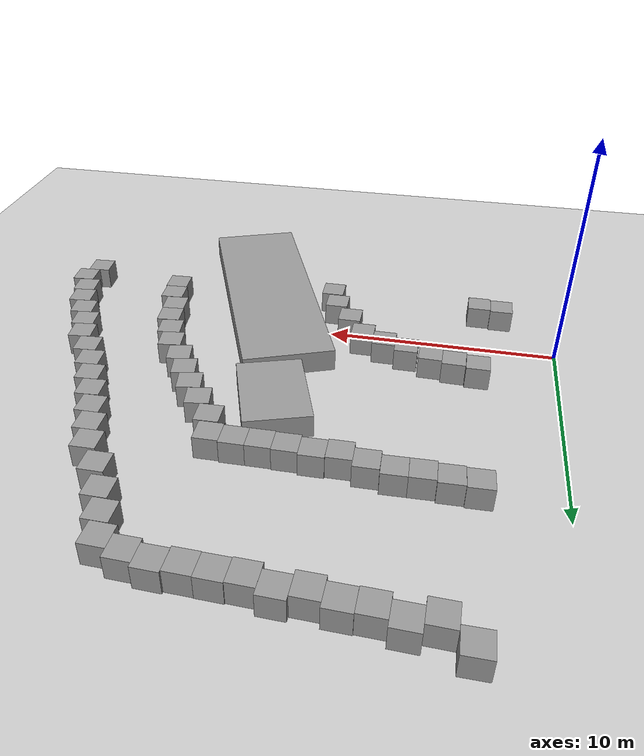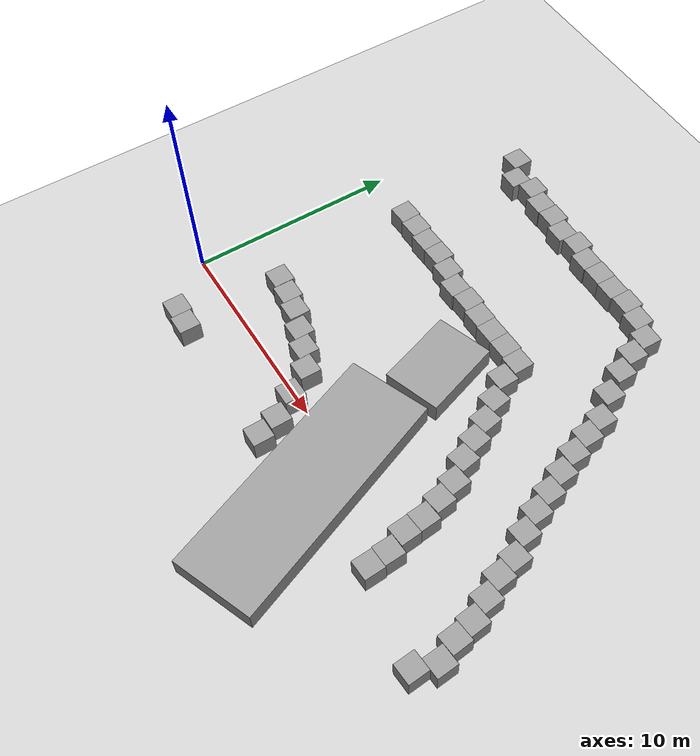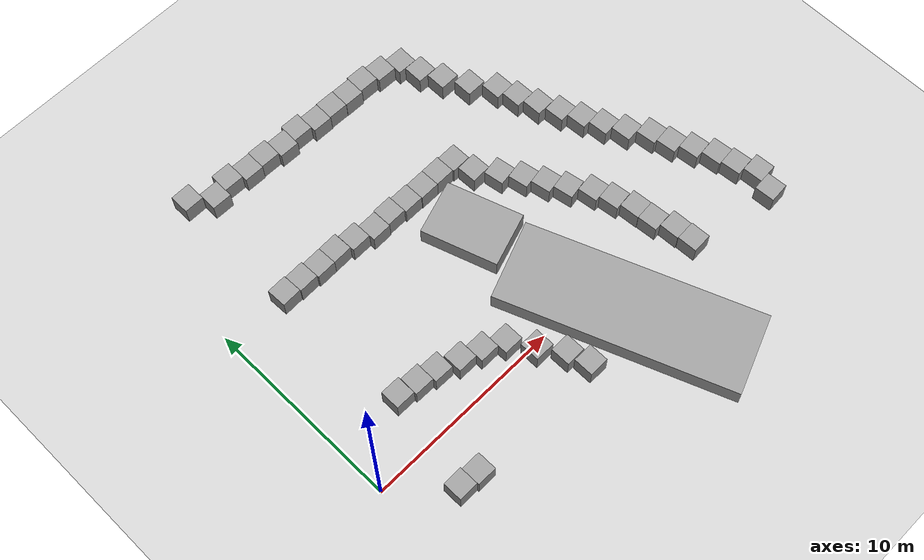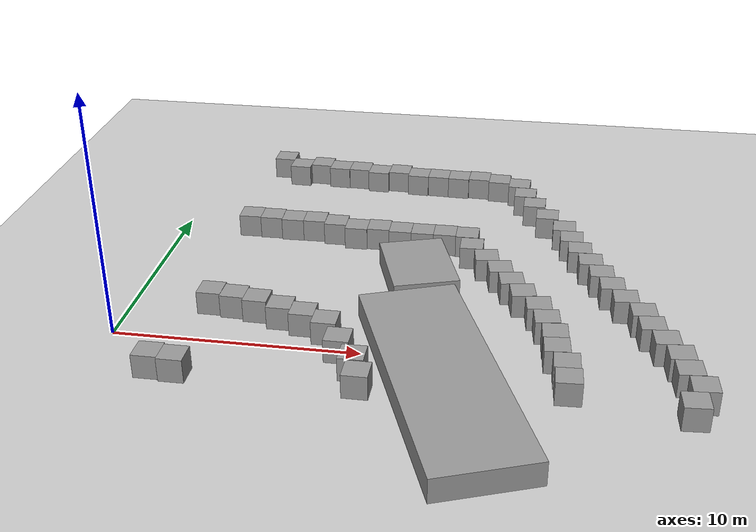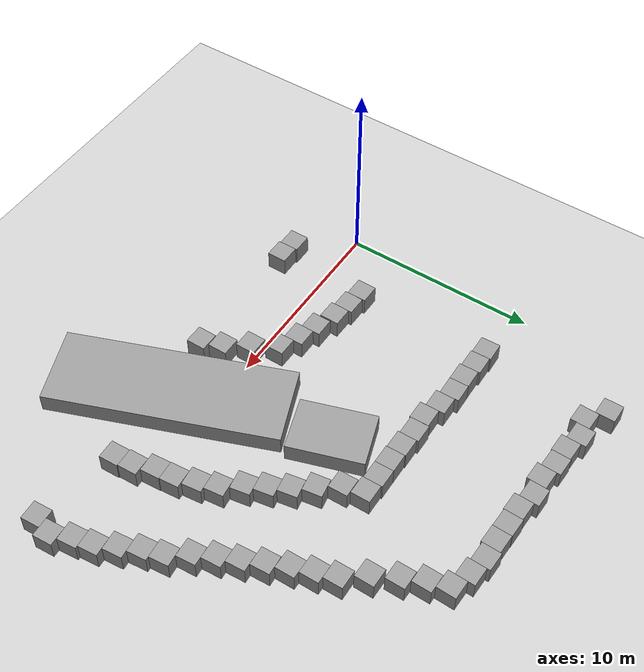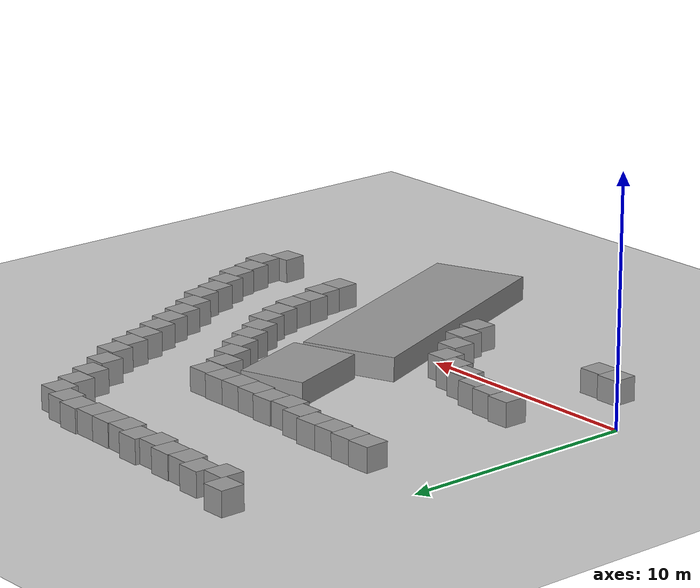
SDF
<sdf version="1.7">
 <world name="default">
  <model name="ground_plane">
   <static>1</static>
   <link name="link">
    <collision name="collision">
     <geometry><plane><normal>0 0 1</normal><size>100 100</size></plane></geometry>
     <surface>
      <contact><collide_bitmask>65535</collide_bitmask></contact>
      <friction><ode><mu>100</mu><mu2>50</mu2></ode></friction>
     </surface>
    </collision>
    <visual name="visual">
     <cast_shadows>0</cast_shadows>
     <geometry><plane><normal>0 0 1</normal><size>100 100</size></plane></geometry>
     <material>
      <script><uri>file://media/materials/scripts/gazebo.material</uri><name>Gazebo/Grey</name></script>
     </material>
    </visual>
   </link>
  </model>
  <model name="unit_box_4">
   <pose>3.37256 2.4173 0.5 0 -0 -0.00193</pose>
   <link name="link">
    <inertial>
     <mass>1</mass>
     <inertia>
      <ixx>0.166667</ixx>
      <ixy>0</ixy>
      <ixz>0</ixz>
      <iyy>0.166667</iyy>
      <iyz>0</iyz>
      <izz>0.166667</izz>
     </inertia>
    </inertial>
    <collision name="collision"><geometry><box><size>1 1 1</size></box></geometry></collision>
    <visual name="visual">
     <geometry><box><size>1 1 1</size></box></geometry>
     <material>
      <script><name>Gazebo/Grey</name><uri>file://media/materials/scripts/gazebo.material</uri></script>
     </material>
    </visual>
   </link>
  </model>
  <model name="unit_box_14">
   <pose>2.39599 -2.35304 0.5 0 -0 0.006262</pose>
   <link name="link">
    <inertial>
     <mass>1</mass>
     <inertia>
      <ixx>0.166667</ixx>
      <ixy>0</ixy>
      <ixz>0</ixz>
      <iyy>0.166667</iyy>
      <iyz>0</iyz>
      <izz>0.166667</izz>
     </inertia>
    </inertial>
    <collision name="collision"><geometry><box><size>1 1 1</size></box></geometry></collision>
    <visual name="visual">
     <geometry><box><size>1 1 1</size></box></geometry>
     <material>
      <script><name>Gazebo/Grey</name><uri>file://media/materials/scripts/gazebo.material</uri></script>
     </material>
    </visual>
   </link>
  </model>
  <model name="unit_box_15">
   <pose>3.39655 -2.43483 0.5 0 -0 0.006225</pose>
   <link name="link">
    <inertial>
     <mass>1</mass>
     <inertia>
      <ixx>0.166667</ixx>
      <ixy>0</ixy>
      <ixz>0</ixz>
      <iyy>0.166667</iyy>
      <iyz>0</iyz>
      <izz>0.166667</izz>
     </inertia>
    </inertial>
    <collision name="collision"><geometry><box><size>1 1 1</size></box></geometry></collision>
    <visual name="visual">
     <geometry><box><size>1 1 1</size></box></geometry>
     <material>
      <script><name>Gazebo/Grey</name><uri>file://media/materials/scripts/gazebo.material</uri></script>
     </material>
    </visual>
   </link>
  </model>
  <model name="unit_box_20">
   <pose>4.38108 2.28354 0.5 0 0 -0.015499</pose>
   <link name="link">
    <inertial>
     <mass>1</mass>
     <inertia>
      <ixx>0.166667</ixx>
      <ixy>0</ixy>
      <ixz>0</ixz>
      <iyy>0.166667</iyy>
      <iyz>0</iyz>
      <izz>0.166667</izz>
     </inertia>
    </inertial>
    <collision name="collision"><geometry><box><size>1 1 1</size></box></geometry></collision>
    <visual name="visual">
     <geometry><box><size>1 1 1</size></box></geometry>
     <material>
      <script><name>Gazebo/Grey</name><uri>file://media/materials/scripts/gazebo.material</uri></script>
     </material>
    </visual>
   </link>
  </model>
  <model name="unit_box_21">
   <pose>5.37841 2.09652 0.5 -0 -0 -0.0155</pose>
   <link name="link">
    <inertial>
     <mass>1</mass>
     <inertia>
      <ixx>0.166667</ixx>
      <ixy>0</ixy>
      <ixz>0</ixz>
      <iyy>0.166667</iyy>
      <iyz>0</iyz>
      <izz>0.166667</izz>
     </inertia>
    </inertial>
    <collision name="collision"><geometry><box><size>1 1 1</size></box></geometry></collision>
    <visual name="visual">
     <geometry><box><size>1 1 1</size></box></geometry>
     <material>
      <script><name>Gazebo/Grey</name><uri>file://media/materials/scripts/gazebo.material</uri></script>
     </material>
    </visual>
   </link>
  </model>
  <model name="unit_box_22">
   <pose>6.44585 1.71085 0.5 0 -0 5e-06</pose>
   <link name="link">
    <inertial>
     <mass>1</mass>
     <inertia>
      <ixx>0.166667</ixx>
      <ixy>0</ixy>
      <ixz>0</ixz>
      <iyy>0.166667</iyy>
      <iyz>0</iyz>
      <izz>0.166667</izz>
     </inertia>
    </inertial>
    <collision name="collision"><geometry><box><size>1 1 1</size></box></geometry></collision>
    <visual name="visual">
     <geometry><box><size>1 1 1</size></box></geometry>
     <material>
      <script><name>Gazebo/Grey</name><uri>file://media/materials/scripts/gazebo.material</uri></script>
     </material>
    </visual>
   </link>
  </model>
  <model name="unit_box_23">
   <pose>7.4465 1.3632 0.5 0 -0 5e-06</pose>
   <link name="link">
    <inertial>
     <mass>1</mass>
     <inertia>
      <ixx>0.166667</ixx>
      <ixy>0</ixy>
      <ixz>0</ixz>
      <iyy>0.166667</iyy>
      <iyz>0</iyz>
      <izz>0.166667</izz>
     </inertia>
    </inertial>
    <collision name="collision"><geometry><box><size>1 1 1</size></box></geometry></collision>
    <visual name="visual">
     <geometry><box><size>1 1 1</size></box></geometry>
     <material>
      <script><name>Gazebo/Grey</name><uri>file://media/materials/scripts/gazebo.material</uri></script>
     </material>
    </visual>
   </link>
  </model>
  <model name="unit_box_24">
   <pose>8.44685 0.885148 0.5 0 -0 5e-06</pose>
   <link name="link">
    <inertial>
     <mass>1</mass>
     <inertia>
      <ixx>0.166667</ixx>
      <ixy>0</ixy>
      <ixz>0</ixz>
      <iyy>0.166667</iyy>
      <iyz>0</iyz>
      <izz>0.166667</izz>
     </inertia>
    </inertial>
    <collision name="collision"><geometry><box><size>1 1 1</size></box></geometry></collision>
    <visual name="visual">
     <geometry><box><size>1 1 1</size></box></geometry>
     <material>
      <script><name>Gazebo/Grey</name><uri>file://media/materials/scripts/gazebo.material</uri></script>
     </material>
    </visual>
   </link>
  </model>
  <model name="unit_box_25">
   <pose>9.18636 -0.290445 0.5 0 -0 5e-06</pose>
   <link name="link">
    <inertial>
     <mass>1</mass>
     <inertia>
      <ixx>0.166667</ixx>
      <ixy>0</ixy>
      <ixz>0</ixz>
      <iyy>0.166667</iyy>
      <iyz>0</iyz>
      <izz>0.166667</izz>
     </inertia>
    </inertial>
    <collision name="collision"><geometry><box><size>1 1 1</size></box></geometry></collision>
    <visual name="visual">
     <geometry><box><size>1 1 1</size></box></geometry>
     <material>
      <script><name>Gazebo/Grey</name><uri>file://media/materials/scripts/gazebo.material</uri></script>
     </material>
    </visual>
   </link>
  </model>
  <model name="unit_box_26">
   <pose>9.95453 -1.40481 0.5 0 -0 0.004582</pose>
   <link name="link">
    <inertial>
     <mass>1</mass>
     <inertia>
      <ixx>0.166667</ixx>
      <ixy>0</ixy>
      <ixz>0</ixz>
      <iyy>0.166667</iyy>
      <iyz>0</iyz>
      <izz>0.166667</izz>
     </inertia>
    </inertial>
    <collision name="collision"><geometry><box><size>1 1 1</size></box></geometry></collision>
    <visual name="visual">
     <geometry><box><size>1 1 1</size></box></geometry>
     <material>
      <script><name>Gazebo/Grey</name><uri>file://media/materials/scripts/gazebo.material</uri></script>
     </material>
    </visual>
   </link>
  </model>
  <model name="unit_box_27">
   <pose>10.305 -2.44806 0.5 0 -0 5e-06</pose>
   <link name="link">
    <inertial>
     <mass>1</mass>
     <inertia>
      <ixx>0.166667</ixx>
      <ixy>0</ixy>
      <ixz>0</ixz>
      <iyy>0.166667</iyy>
      <iyz>0</iyz>
      <izz>0.166667</izz>
     </inertia>
    </inertial>
    <collision name="collision"><geometry><box><size>1 1 1</size></box></geometry></collision>
    <visual name="visual">
     <geometry><box><size>1 1 1</size></box></geometry>
     <material>
      <script><name>Gazebo/Grey</name><uri>file://media/materials/scripts/gazebo.material</uri></script>
     </material>
    </visual>
   </link>
  </model>
  <model name="unit_box_32_clone_22">
   <pose>17.915 -1.70225 0.5 0 -0 0.046373</pose>
   <link name="link">
    <inertial>
     <mass>1</mass>
     <inertia>
      <ixx>0.166667</ixx>
      <ixy>0</ixy>
      <ixz>0</ixz>
      <iyy>0.166667</iyy>
      <iyz>0</iyz>
      <izz>0.166667</izz>
     </inertia>
    </inertial>
    <collision name="collision"><geometry><box><size>1 1 1</size></box></geometry></collision>
    <visual name="visual">
     <geometry><box><size>1 1 1</size></box></geometry>
     <material>
      <script><name>Gazebo/Grey</name><uri>file://media/materials/scripts/gazebo.material</uri></script>
     </material>
    </visual>
   </link>
  </model>
  <model name="unit_box_32_clone_23">
   <pose>17.8221 -0.705479 0.5 0 -0 0.046392</pose>
   <link name="link">
    <inertial>
     <mass>1</mass>
     <inertia>
      <ixx>0.166667</ixx>
      <ixy>0</ixy>
      <ixz>0</ixz>
      <iyy>0.166667</iyy>
      <iyz>0</iyz>
      <izz>0.166667</izz>
     </inertia>
    </inertial>
    <collision name="collision"><geometry><box><size>1 1 1</size></box></geometry></collision>
    <visual name="visual">
     <geometry><box><size>1 1 1</size></box></geometry>
     <material>
      <script><name>Gazebo/Grey</name><uri>file://media/materials/scripts/gazebo.material</uri></script>
     </material>
    </visual>
   </link>
  </model>
  <model name="unit_box_32_clone_24">
   <pose>17.4265 0.282875 0.499995 0 -1e-05 0.081744</pose>
   <link name="link">
    <inertial>
     <mass>1</mass>
     <inertia>
      <ixx>0.166667</ixx>
      <ixy>0</ixy>
      <ixz>0</ixz>
      <iyy>0.166667</iyy>
      <iyz>0</iyz>
      <izz>0.166667</izz>
     </inertia>
    </inertial>
    <collision name="collision"><geometry><box><size>1 1 1</size></box></geometry></collision>
    <visual name="visual">
     <geometry><box><size>1 1 1</size></box></geometry>
     <material>
      <script><name>Gazebo/Grey</name><uri>file://media/materials/scripts/gazebo.material</uri></script>
     </material>
    </visual>
   </link>
  </model>
  <model name="unit_box_32_clone_25">
   <pose>17.3248 1.27792 0.5 0 -0 0.081794</pose>
   <link name="link">
    <inertial>
     <mass>1</mass>
     <inertia>
      <ixx>0.166667</ixx>
      <ixy>0</ixy>
      <ixz>0</ixz>
      <iyy>0.166667</iyy>
      <iyz>0</iyz>
      <izz>0.166667</izz>
     </inertia>
    </inertial>
    <collision name="collision"><geometry><box><size>1 1 1</size></box></geometry></collision>
    <visual name="visual">
     <geometry><box><size>1 1 1</size></box></geometry>
     <material>
      <script><name>Gazebo/Grey</name><uri>file://media/materials/scripts/gazebo.material</uri></script>
     </material>
    </visual>
   </link>
  </model>
  <model name="unit_box_32_clone_26">
   <pose>16.9722 2.26187 0.499995 0 -1e-05 0.121427</pose>
   <link name="link">
    <inertial>
     <mass>1</mass>
     <inertia>
      <ixx>0.166667</ixx>
      <ixy>0</ixy>
      <ixz>0</ixz>
      <iyy>0.166667</iyy>
      <iyz>0</iyz>
      <izz>0.166667</izz>
     </inertia>
    </inertial>
    <collision name="collision"><geometry><box><size>1 1 1</size></box></geometry></collision>
    <visual name="visual">
     <geometry><box><size>1 1 1</size></box></geometry>
     <material>
      <script><name>Gazebo/Grey</name><uri>file://media/materials/scripts/gazebo.material</uri></script>
     </material>
    </visual>
   </link>
  </model>
  <model name="unit_box_32_clone_27">
   <pose>16.6091 3.22503 0.5 0 -0 0.121588</pose>
   <link name="link">
    <inertial>
     <mass>1</mass>
     <inertia>
      <ixx>0.166667</ixx>
      <ixy>0</ixy>
      <ixz>0</ixz>
      <iyy>0.166667</iyy>
      <iyz>0</iyz>
      <izz>0.166667</izz>
     </inertia>
    </inertial>
    <collision name="collision"><geometry><box><size>1 1 1</size></box></geometry></collision>
    <visual name="visual">
     <geometry><box><size>1 1 1</size></box></geometry>
     <material>
      <script><name>Gazebo/Grey</name><uri>file://media/materials/scripts/gazebo.material</uri></script>
     </material>
    </visual>
   </link>
  </model>
  <model name="unit_box_32_clone_28">
   <pose>15.9248 4.14591 0.499995 -0 1e-05 0.175631</pose>
   <link name="link">
    <inertial>
     <mass>1</mass>
     <inertia>
      <ixx>0.166667</ixx>
      <ixy>0</ixy>
      <ixz>0</ixz>
      <iyy>0.166667</iyy>
      <iyz>0</iyz>
      <izz>0.166667</izz>
     </inertia>
    </inertial>
    <collision name="collision"><geometry><box><size>1 1 1</size></box></geometry></collision>
    <visual name="visual">
     <geometry><box><size>1 1 1</size></box></geometry>
     <material>
      <script><name>Gazebo/Grey</name><uri>file://media/materials/scripts/gazebo.material</uri></script>
     </material>
    </visual>
   </link>
  </model>
  <model name="unit_box_32_clone_29">
   <pose>15.4032 5.06903 0.5 0 -0 0.17563</pose>
   <link name="link">
    <inertial>
     <mass>1</mass>
     <inertia>
      <ixx>0.166667</ixx>
      <ixy>0</ixy>
      <ixz>0</ixz>
      <iyy>0.166667</iyy>
      <iyz>0</iyz>
      <izz>0.166667</izz>
     </inertia>
    </inertial>
    <collision name="collision"><geometry><box><size>1 1 1</size></box></geometry></collision>
    <visual name="visual">
     <geometry><box><size>1 1 1</size></box></geometry>
     <material>
      <script><name>Gazebo/Grey</name><uri>file://media/materials/scripts/gazebo.material</uri></script>
     </material>
    </visual>
   </link>
  </model>
  <model name="unit_box_32_clone_30">
   <pose>14.8669 5.9895 0.5 0 -0 0.175607</pose>
   <link name="link">
    <inertial>
     <mass>1</mass>
     <inertia>
      <ixx>0.166667</ixx>
      <ixy>0</ixy>
      <ixz>0</ixz>
      <iyy>0.166667</iyy>
      <iyz>0</iyz>
      <izz>0.166667</izz>
     </inertia>
    </inertial>
    <collision name="collision"><geometry><box><size>1 1 1</size></box></geometry></collision>
    <visual name="visual">
     <geometry><box><size>1 1 1</size></box></geometry>
     <material>
      <script><name>Gazebo/Grey</name><uri>file://media/materials/scripts/gazebo.material</uri></script>
     </material>
    </visual>
   </link>
  </model>
  <model name="unit_box_32_clone_31">
   <pose>14.216 6.89907 0.5 0 -0 0.157063</pose>
   <link name="link">
    <inertial>
     <mass>1</mass>
     <inertia>
      <ixx>0.166667</ixx>
      <ixy>0</ixy>
      <ixz>0</ixz>
      <iyy>0.166667</iyy>
      <iyz>0</iyz>
      <izz>0.166667</izz>
     </inertia>
    </inertial>
    <collision name="collision"><geometry><box><size>1 1 1</size></box></geometry></collision>
    <visual name="visual">
     <geometry><box><size>1 1 1</size></box></geometry>
     <material>
      <script><name>Gazebo/Grey</name><uri>file://media/materials/scripts/gazebo.material</uri></script>
     </material>
    </visual>
   </link>
  </model>
  <model name="unit_box_32_clone_32">
   <pose>13.4893 7.8569 0.5 0 -0 0.029155</pose>
   <link name="link">
    <inertial>
     <mass>1</mass>
     <inertia>
      <ixx>0.166667</ixx>
      <ixy>0</ixy>
      <ixz>0</ixz>
      <iyy>0.166667</iyy>
      <iyz>0</iyz>
      <izz>0.166667</izz>
     </inertia>
    </inertial>
    <collision name="collision"><geometry><box><size>1 1 1</size></box></geometry></collision>
    <visual name="visual">
     <geometry><box><size>1 1 1</size></box></geometry>
     <material>
      <script><name>Gazebo/Grey</name><uri>file://media/materials/scripts/gazebo.material</uri></script>
     </material>
    </visual>
   </link>
  </model>
  <model name="unit_box_32_clone_33">
   <pose>13.1982 8.87655 0.5 0 -0 0.01535</pose>
   <link name="link">
    <inertial>
     <mass>1</mass>
     <inertia>
      <ixx>0.166667</ixx>
      <ixy>0</ixy>
      <ixz>0</ixz>
      <iyy>0.166667</iyy>
      <iyz>0</iyz>
      <izz>0.166667</izz>
     </inertia>
    </inertial>
    <collision name="collision"><geometry><box><size>1 1 1</size></box></geometry></collision>
    <visual name="visual">
     <geometry><box><size>1 1 1</size></box></geometry>
     <material>
      <script><name>Gazebo/Grey</name><uri>file://media/materials/scripts/gazebo.material</uri></script>
     </material>
    </visual>
   </link>
  </model>
  <model name="unit_box_32_clone_62">
   <pose>22.314 -2.52261 0.499999 1e-06 -0 0.065665</pose>
   <link name="link">
    <inertial>
     <mass>1</mass>
     <inertia>
      <ixx>0.166667</ixx>
      <ixy>0</ixy>
      <ixz>0</ixz>
      <iyy>0.166667</iyy>
      <iyz>0</iyz>
      <izz>0.166667</izz>
     </inertia>
    </inertial>
    <collision name="collision"><geometry><box><size>1 1 1</size></box></geometry></collision>
    <visual name="visual">
     <geometry><box><size>1 1 1</size></box></geometry>
     <material>
      <script><name>Gazebo/Grey</name><uri>file://media/materials/scripts/gazebo.material</uri></script>
     </material>
    </visual>
   </link>
  </model>
  <model name="unit_box_32_clone_63">
   <pose>22.6986 -1.49511 0.5 0 -0 0.065756</pose>
   <link name="link">
    <inertial>
     <mass>1</mass>
     <inertia>
      <ixx>0.166667</ixx>
      <ixy>0</ixy>
      <ixz>0</ixz>
      <iyy>0.166667</iyy>
      <iyz>0</iyz>
      <izz>0.166667</izz>
     </inertia>
    </inertial>
    <collision name="collision"><geometry><box><size>1 1 1</size></box></geometry></collision>
    <visual name="visual">
     <geometry><box><size>1 1 1</size></box></geometry>
     <material>
      <script><name>Gazebo/Grey</name><uri>file://media/materials/scripts/gazebo.material</uri></script>
     </material>
    </visual>
   </link>
  </model>
  <model name="unit_box_32_clone_64">
   <pose>22.2494 -0.518774 0.499995 0 -1e-05 0.096065</pose>
   <link name="link">
    <inertial>
     <mass>1</mass>
     <inertia>
      <ixx>0.166667</ixx>
      <ixy>0</ixy>
      <ixz>0</ixz>
      <iyy>0.166667</iyy>
      <iyz>0</iyz>
      <izz>0.166667</izz>
     </inertia>
    </inertial>
    <collision name="collision"><geometry><box><size>1 1 1</size></box></geometry></collision>
    <visual name="visual">
     <geometry><box><size>1 1 1</size></box></geometry>
     <material>
      <script><name>Gazebo/Grey</name><uri>file://media/materials/scripts/gazebo.material</uri></script>
     </material>
    </visual>
   </link>
  </model>
  <model name="unit_box_32_clone_65">
   <pose>22.0121 0.463005 0.499995 -1e-05 -0 0.096071</pose>
   <link name="link">
    <inertial>
     <mass>1</mass>
     <inertia>
      <ixx>0.166667</ixx>
      <ixy>0</ixy>
      <ixz>0</ixz>
      <iyy>0.166667</iyy>
      <iyz>0</iyz>
      <izz>0.166667</izz>
     </inertia>
    </inertial>
    <collision name="collision"><geometry><box><size>1 1 1</size></box></geometry></collision>
    <visual name="visual">
     <geometry><box><size>1 1 1</size></box></geometry>
     <material>
      <script><name>Gazebo/Grey</name><uri>file://media/materials/scripts/gazebo.material</uri></script>
     </material>
    </visual>
   </link>
  </model>
  <model name="unit_box_32_clone_66">
   <pose>21.523 1.42169 0.5 0 -0 0.107049</pose>
   <link name="link">
    <inertial>
     <mass>1</mass>
     <inertia>
      <ixx>0.166667</ixx>
      <ixy>0</ixy>
      <ixz>0</ixz>
      <iyy>0.166667</iyy>
      <iyz>0</iyz>
      <izz>0.166667</izz>
     </inertia>
    </inertial>
    <collision name="collision"><geometry><box><size>1 1 1</size></box></geometry></collision>
    <visual name="visual">
     <geometry><box><size>1 1 1</size></box></geometry>
     <material>
      <script><name>Gazebo/Grey</name><uri>file://media/materials/scripts/gazebo.material</uri></script>
     </material>
    </visual>
   </link>
  </model>
  <model name="unit_box_32_clone_67">
   <pose>21.0283 2.37429 0.5 0 -0 0.107049</pose>
   <link name="link">
    <inertial>
     <mass>1</mass>
     <inertia>
      <ixx>0.166667</ixx>
      <ixy>0</ixy>
      <ixz>0</ixz>
      <iyy>0.166667</iyy>
      <iyz>0</iyz>
      <izz>0.166667</izz>
     </inertia>
    </inertial>
    <collision name="collision"><geometry><box><size>1 1 1</size></box></geometry></collision>
    <visual name="visual">
     <geometry><box><size>1 1 1</size></box></geometry>
     <material>
      <script><name>Gazebo/Grey</name><uri>file://media/materials/scripts/gazebo.material</uri></script>
     </material>
    </visual>
   </link>
  </model>
  <model name="unit_box_32_clone_68">
   <pose>20.724 3.34736 0.499995 0 1e-05 0.107034</pose>
   <link name="link">
    <inertial>
     <mass>1</mass>
     <inertia>
      <ixx>0.166667</ixx>
      <ixy>0</ixy>
      <ixz>0</ixz>
      <iyy>0.166667</iyy>
      <iyz>0</iyz>
      <izz>0.166667</izz>
     </inertia>
    </inertial>
    <collision name="collision"><geometry><box><size>1 1 1</size></box></geometry></collision>
    <visual name="visual">
     <geometry><box><size>1 1 1</size></box></geometry>
     <material>
      <script><name>Gazebo/Grey</name><uri>file://media/materials/scripts/gazebo.material</uri></script>
     </material>
    </visual>
   </link>
  </model>
  <model name="unit_box_32_clone_69">
   <pose>20.0438 4.29378 0.5 0 -0 0.079301</pose>
   <link name="link">
    <inertial>
     <mass>1</mass>
     <inertia>
      <ixx>0.166667</ixx>
      <ixy>0</ixy>
      <ixz>0</ixz>
      <iyy>0.166667</iyy>
      <iyz>0</iyz>
      <izz>0.166667</izz>
     </inertia>
    </inertial>
    <collision name="collision"><geometry><box><size>1 1 1</size></box></geometry></collision>
    <visual name="visual">
     <geometry><box><size>1 1 1</size></box></geometry>
     <material>
      <script><name>Gazebo/Grey</name><uri>file://media/materials/scripts/gazebo.material</uri></script>
     </material>
    </visual>
   </link>
  </model>
  <model name="unit_box_32_clone_70">
   <pose>19.521 5.25999 0.5 0 -0 0.07009</pose>
   <link name="link">
    <inertial>
     <mass>1</mass>
     <inertia>
      <ixx>0.166667</ixx>
      <ixy>0</ixy>
      <ixz>0</ixz>
      <iyy>0.166667</iyy>
      <iyz>0</iyz>
      <izz>0.166667</izz>
     </inertia>
    </inertial>
    <collision name="collision"><geometry><box><size>1 1 1</size></box></geometry></collision>
    <visual name="visual">
     <geometry><box><size>1 1 1</size></box></geometry>
     <material>
      <script><name>Gazebo/Grey</name><uri>file://media/materials/scripts/gazebo.material</uri></script>
     </material>
    </visual>
   </link>
  </model>
  <model name="unit_box_32_clone_71">
   <pose>19.0887 6.23212 0.499995 0 -1e-05 0.070048</pose>
   <link name="link">
    <inertial>
     <mass>1</mass>
     <inertia>
      <ixx>0.166667</ixx>
      <ixy>0</ixy>
      <ixz>0</ixz>
      <iyy>0.166667</iyy>
      <iyz>0</iyz>
      <izz>0.166667</izz>
     </inertia>
    </inertial>
    <collision name="collision"><geometry><box><size>1 1 1</size></box></geometry></collision>
    <visual name="visual">
     <geometry><box><size>1 1 1</size></box></geometry>
     <material>
      <script><name>Gazebo/Grey</name><uri>file://media/materials/scripts/gazebo.material</uri></script>
     </material>
    </visual>
   </link>
  </model>
  <model name="unit_box_32_clone_72">
   <pose>18.6258 7.20615 0.5 0 -0 0.061942</pose>
   <link name="link">
    <inertial>
     <mass>1</mass>
     <inertia>
      <ixx>0.166667</ixx>
      <ixy>0</ixy>
      <ixz>0</ixz>
      <iyy>0.166667</iyy>
      <iyz>0</iyz>
      <izz>0.166667</izz>
     </inertia>
    </inertial>
    <collision name="collision"><geometry><box><size>1 1 1</size></box></geometry></collision>
    <visual name="visual">
     <geometry><box><size>1 1 1</size></box></geometry>
     <material>
      <script><name>Gazebo/Grey</name><uri>file://media/materials/scripts/gazebo.material</uri></script>
     </material>
    </visual>
   </link>
  </model>
  <model name="unit_box_32_clone_73">
   <pose>18.167 8.20061 0.5 0 -0 0.019139</pose>
   <link name="link">
    <inertial>
     <mass>1</mass>
     <inertia>
      <ixx>0.166667</ixx>
      <ixy>0</ixy>
      <ixz>0</ixz>
      <iyy>0.166667</iyy>
      <iyz>0</iyz>
      <izz>0.166667</izz>
     </inertia>
    </inertial>
    <collision name="collision"><geometry><box><size>1 1 1</size></box></geometry></collision>
    <visual name="visual">
     <geometry><box><size>1 1 1</size></box></geometry>
     <material>
      <script><name>Gazebo/Grey</name><uri>file://media/materials/scripts/gazebo.material</uri></script>
     </material>
    </visual>
   </link>
  </model>
  <model name="unit_box_32_clone_74">
   <pose>17.7907 9.1937 0.5 0 -0 0.018921</pose>
   <link name="link">
    <inertial>
     <mass>1</mass>
     <inertia>
      <ixx>0.166667</ixx>
      <ixy>0</ixy>
      <ixz>0</ixz>
      <iyy>0.166667</iyy>
      <iyz>0</iyz>
      <izz>0.166667</izz>
     </inertia>
    </inertial>
    <collision name="collision"><geometry><box><size>1 1 1</size></box></geometry></collision>
    <visual name="visual">
     <geometry><box><size>1 1 1</size></box></geometry>
     <material>
      <script><name>Gazebo/Grey</name><uri>file://media/materials/scripts/gazebo.material</uri></script>
     </material>
    </visual>
   </link>
  </model>
  <model name="unit_box_32_clone_75">
   <pose>17.4381 10.1873 0.499995 0 -1e-05 0.018705</pose>
   <link name="link">
    <inertial>
     <mass>1</mass>
     <inertia>
      <ixx>0.166667</ixx>
      <ixy>0</ixy>
      <ixz>0</ixz>
      <iyy>0.166667</iyy>
      <iyz>0</iyz>
      <izz>0.166667</izz>
     </inertia>
    </inertial>
    <collision name="collision"><geometry><box><size>1 1 1</size></box></geometry></collision>
    <visual name="visual">
     <geometry><box><size>1 1 1</size></box></geometry>
     <material>
      <script><name>Gazebo/Grey</name><uri>file://media/materials/scripts/gazebo.material</uri></script>
     </material>
    </visual>
   </link>
  </model>
  <model name="unit_box_32_clone_76">
   <pose>16.6369 11.2615 0.5 0 -0 0.001324</pose>
   <link name="link">
    <inertial>
     <mass>1</mass>
     <inertia>
      <ixx>0.166667</ixx>
      <ixy>0</ixy>
      <ixz>0</ixz>
      <iyy>0.166667</iyy>
      <iyz>0</iyz>
      <izz>0.166667</izz>
     </inertia>
    </inertial>
    <collision name="collision"><geometry><box><size>1 1 1</size></box></geometry></collision>
    <visual name="visual">
     <geometry><box><size>1 1 1</size></box></geometry>
     <material>
      <script><name>Gazebo/Grey</name><uri>file://media/materials/scripts/gazebo.material</uri></script>
     </material>
    </visual>
   </link>
  </model>
  <model name="unit_box_32_clone_77">
   <pose>16 12.4104 0.5 0 -0 0.001319</pose>
   <link name="link">
    <inertial>
     <mass>1</mass>
     <inertia>
      <ixx>0.166667</ixx>
      <ixy>0</ixy>
      <ixz>0</ixz>
      <iyy>0.166667</iyy>
      <iyz>0</iyz>
      <izz>0.166667</izz>
     </inertia>
    </inertial>
    <collision name="collision"><geometry><box><size>1 1 1</size></box></geometry></collision>
    <visual name="visual">
     <geometry><box><size>1 1 1</size></box></geometry>
     <material>
      <script><name>Gazebo/Grey</name><uri>file://media/materials/scripts/gazebo.material</uri></script>
     </material>
    </visual>
   </link>
  </model>
  <model name="unit_box_32_clone_78">
   <pose>15.5142 13.4334 0.5 0 0 -0.008252</pose>
   <link name="link">
    <inertial>
     <mass>1</mass>
     <inertia>
      <ixx>0.166667</ixx>
      <ixy>0</ixy>
      <ixz>0</ixz>
      <iyy>0.166667</iyy>
      <iyz>0</iyz>
      <izz>0.166667</izz>
     </inertia>
    </inertial>
    <collision name="collision"><geometry><box><size>1 1 1</size></box></geometry></collision>
    <visual name="visual">
     <geometry><box><size>1 1 1</size></box></geometry>
     <material>
      <script><name>Gazebo/Grey</name><uri>file://media/materials/scripts/gazebo.material</uri></script>
     </material>
    </visual>
   </link>
  </model>
  <model name="unit_box_32_clone_78_clone">
   <pose>15.1782 14.4476 0.5 0 0 -0.024448</pose>
   <link name="link">
    <inertial>
     <mass>1</mass>
     <inertia>
      <ixx>0.166667</ixx>
      <ixy>0</ixy>
      <ixz>0</ixz>
      <iyy>0.166667</iyy>
      <iyz>0</iyz>
      <izz>0.166667</izz>
     </inertia>
    </inertial>
    <collision name="collision"><geometry><box><size>1 1 1</size></box></geometry></collision>
    <visual name="visual">
     <geometry><box><size>1 1 1</size></box></geometry>
     <material>
      <script><name>Gazebo/Grey</name><uri>file://media/materials/scripts/gazebo.material</uri></script>
     </material>
    </visual>
   </link>
  </model>
  <model name="unit_box_32_clone_78_clone_0">
   <pose>14.1869 14.817 0.5 0 0 -0.024455</pose>
   <link name="link">
    <inertial>
     <mass>1</mass>
     <inertia>
      <ixx>0.166667</ixx>
      <ixy>0</ixy>
      <ixz>0</ixz>
      <iyy>0.166667</iyy>
      <iyz>0</iyz>
      <izz>0.166667</izz>
     </inertia>
    </inertial>
    <collision name="collision"><geometry><box><size>1 1 1</size></box></geometry></collision>
    <visual name="visual">
     <geometry><box><size>1 1 1</size></box></geometry>
     <material>
      <script><name>Gazebo/Grey</name><uri>file://media/materials/scripts/gazebo.material</uri></script>
     </material>
    </visual>
   </link>
  </model>
  <model name="unit_box_32_clone_78_clone_1">
   <pose>13.1913 15.0088 0.5 0 0 -0.024455</pose>
   <link name="link">
    <inertial>
     <mass>1</mass>
     <inertia>
      <ixx>0.166667</ixx>
      <ixy>0</ixy>
      <ixz>0</ixz>
      <iyy>0.166667</iyy>
      <iyz>0</iyz>
      <izz>0.166667</izz>
     </inertia>
    </inertial>
    <collision name="collision"><geometry><box><size>1 1 1</size></box></geometry></collision>
    <visual name="visual">
     <geometry><box><size>1 1 1</size></box></geometry>
     <material>
      <script><name>Gazebo/Grey</name><uri>file://media/materials/scripts/gazebo.material</uri></script>
     </material>
    </visual>
   </link>
  </model>
  <model name="unit_box_32_clone_78_clone_2">
   <pose>12.1896 14.953 0.5 -0 -0 -0.024445</pose>
   <link name="link">
    <inertial>
     <mass>1</mass>
     <inertia>
      <ixx>0.166667</ixx>
      <ixy>0</ixy>
      <ixz>0</ixz>
      <iyy>0.166667</iyy>
      <iyz>0</iyz>
      <izz>0.166667</izz>
     </inertia>
    </inertial>
    <collision name="collision"><geometry><box><size>1 1 1</size></box></geometry></collision>
    <visual name="visual">
     <geometry><box><size>1 1 1</size></box></geometry>
     <material>
      <script><name>Gazebo/Grey</name><uri>file://media/materials/scripts/gazebo.material</uri></script>
     </material>
    </visual>
   </link>
  </model>
  <model name="unit_box_32_clone_78_clone_3">
   <pose>11.1902 14.9894 0.5 0 0 -0.024445</pose>
   <link name="link">
    <inertial>
     <mass>1</mass>
     <inertia>
      <ixx>0.166667</ixx>
      <ixy>0</ixy>
      <ixz>0</ixz>
      <iyy>0.166667</iyy>
      <iyz>0</iyz>
      <izz>0.166667</izz>
     </inertia>
    </inertial>
    <collision name="collision"><geometry><box><size>1 1 1</size></box></geometry></collision>
    <visual name="visual">
     <geometry><box><size>1 1 1</size></box></geometry>
     <material>
      <script><name>Gazebo/Grey</name><uri>file://media/materials/scripts/gazebo.material</uri></script>
     </material>
    </visual>
   </link>
  </model>
  <model name="unit_box_32_clone_78_clone_4">
   <pose>10.1896 14.981 0.5 0 0 -0.024408</pose>
   <link name="link">
    <inertial>
     <mass>1</mass>
     <inertia>
      <ixx>0.166667</ixx>
      <ixy>0</ixy>
      <ixz>0</ixz>
      <iyy>0.166667</iyy>
      <iyz>0</iyz>
      <izz>0.166667</izz>
     </inertia>
    </inertial>
    <collision name="collision"><geometry><box><size>1 1 1</size></box></geometry></collision>
    <visual name="visual">
     <geometry><box><size>1 1 1</size></box></geometry>
     <material>
      <script><name>Gazebo/Grey</name><uri>file://media/materials/scripts/gazebo.material</uri></script>
     </material>
    </visual>
   </link>
  </model>
  <model name="unit_box_32_clone_78_clone_5">
   <pose>9.19559 15.245 0.5 0 -0 -0.024604</pose>
   <link name="link">
    <inertial>
     <mass>1</mass>
     <inertia>
      <ixx>0.166667</ixx>
      <ixy>0</ixy>
      <ixz>0</ixz>
      <iyy>0.166667</iyy>
      <iyz>0</iyz>
      <izz>0.166667</izz>
     </inertia>
    </inertial>
    <collision name="collision"><geometry><box><size>1 1 1</size></box></geometry></collision>
    <visual name="visual">
     <geometry><box><size>1 1 1</size></box></geometry>
     <material>
      <script><name>Gazebo/Grey</name><uri>file://media/materials/scripts/gazebo.material</uri></script>
     </material>
    </visual>
   </link>
  </model>
  <model name="unit_box_32_clone_78_clone_6">
   <pose>8.19116 15.0778 0.499995 -1e-05 -0 -0.024602</pose>
   <link name="link">
    <inertial>
     <mass>1</mass>
     <inertia>
      <ixx>0.166667</ixx>
      <ixy>0</ixy>
      <ixz>0</ixz>
      <iyy>0.166667</iyy>
      <iyz>0</iyz>
      <izz>0.166667</izz>
     </inertia>
    </inertial>
    <collision name="collision"><geometry><box><size>1 1 1</size></box></geometry></collision>
    <visual name="visual">
     <geometry><box><size>1 1 1</size></box></geometry>
     <material>
      <script><name>Gazebo/Grey</name><uri>file://media/materials/scripts/gazebo.material</uri></script>
     </material>
    </visual>
   </link>
  </model>
  <model name="unit_box_32_clone_78_clone_7">
   <pose>7.19629 15.2993 0.5 -0 -0 -0.024582</pose>
   <link name="link">
    <inertial>
     <mass>1</mass>
     <inertia>
      <ixx>0.166667</ixx>
      <ixy>0</ixy>
      <ixz>0</ixz>
      <iyy>0.166667</iyy>
      <iyz>0</iyz>
      <izz>0.166667</izz>
     </inertia>
    </inertial>
    <collision name="collision"><geometry><box><size>1 1 1</size></box></geometry></collision>
    <visual name="visual">
     <geometry><box><size>1 1 1</size></box></geometry>
     <material>
      <script><name>Gazebo/Grey</name><uri>file://media/materials/scripts/gazebo.material</uri></script>
     </material>
    </visual>
   </link>
  </model>
  <model name="unit_box_32_clone_33_clone">
   <pose>12.1973 8.92208 0.5 0 -0 0.015367</pose>
   <link name="link">
    <inertial>
     <mass>1</mass>
     <inertia>
      <ixx>0.166667</ixx>
      <ixy>0</ixy>
      <ixz>0</ixz>
      <iyy>0.166667</iyy>
      <iyz>0</iyz>
      <izz>0.166667</izz>
     </inertia>
    </inertial>
    <collision name="collision"><geometry><box><size>1 1 1</size></box></geometry></collision>
    <visual name="visual">
     <geometry><box><size>1 1 1</size></box></geometry>
     <material>
      <script><name>Gazebo/Grey</name><uri>file://media/materials/scripts/gazebo.material</uri></script>
     </material>
    </visual>
   </link>
  </model>
  <model name="unit_box_32_clone_33_clone_clone">
   <pose>11.1974 8.90789 0.5 0 -0 0.015367</pose>
   <link name="link">
    <inertial>
     <mass>1</mass>
     <inertia>
      <ixx>0.166667</ixx>
      <ixy>0</ixy>
      <ixz>0</ixz>
      <iyy>0.166667</iyy>
      <iyz>0</iyz>
      <izz>0.166667</izz>
     </inertia>
    </inertial>
    <collision name="collision"><geometry><box><size>1 1 1</size></box></geometry></collision>
    <visual name="visual">
     <geometry><box><size>1 1 1</size></box></geometry>
     <material>
      <script><name>Gazebo/Grey</name><uri>file://media/materials/scripts/gazebo.material</uri></script>
     </material>
    </visual>
   </link>
  </model>
  <model name="unit_box_32_clone_33_clone_clone_0">
   <pose>10.1964 8.92765 0.5 0 -0 0.015458</pose>
   <link name="link">
    <inertial>
     <mass>1</mass>
     <inertia>
      <ixx>0.166667</ixx>
      <ixy>0</ixy>
      <ixz>0</ixz>
      <iyy>0.166667</iyy>
      <iyz>0</iyz>
      <izz>0.166667</izz>
     </inertia>
    </inertial>
    <collision name="collision"><geometry><box><size>1 1 1</size></box></geometry></collision>
    <visual name="visual">
     <geometry><box><size>1 1 1</size></box></geometry>
     <material>
      <script><name>Gazebo/Grey</name><uri>file://media/materials/scripts/gazebo.material</uri></script>
     </material>
    </visual>
   </link>
  </model>
  <model name="unit_box_32_clone_33_clone_clone_1">
   <pose>9.19475 9.01144 0.5 0 -0 0.015722</pose>
   <link name="link">
    <inertial>
     <mass>1</mass>
     <inertia>
      <ixx>0.166667</ixx>
      <ixy>0</ixy>
      <ixz>0</ixz>
      <iyy>0.166667</iyy>
      <iyz>0</iyz>
      <izz>0.166667</izz>
     </inertia>
    </inertial>
    <collision name="collision"><geometry><box><size>1 1 1</size></box></geometry></collision>
    <visual name="visual">
     <geometry><box><size>1 1 1</size></box></geometry>
     <material>
      <script><name>Gazebo/Grey</name><uri>file://media/materials/scripts/gazebo.material</uri></script>
     </material>
    </visual>
   </link>
  </model>
  <model name="unit_box_32_clone_33_clone_clone_2">
   <pose>8.19472 8.93954 0.5 0 -0 0.017135</pose>
   <link name="link">
    <inertial>
     <mass>1</mass>
     <inertia>
      <ixx>0.166667</ixx>
      <ixy>0</ixy>
      <ixz>0</ixz>
      <iyy>0.166667</iyy>
      <iyz>0</iyz>
      <izz>0.166667</izz>
     </inertia>
    </inertial>
    <collision name="collision"><geometry><box><size>1 1 1</size></box></geometry></collision>
    <visual name="visual">
     <geometry><box><size>1 1 1</size></box></geometry>
     <material>
      <script><name>Gazebo/Grey</name><uri>file://media/materials/scripts/gazebo.material</uri></script>
     </material>
    </visual>
   </link>
  </model>
  <model name="unit_box_32_clone_33_clone_clone_3">
   <pose>7.18982 9.21217 0.5 0 -0 0.017178</pose>
   <link name="link">
    <inertial>
     <mass>1</mass>
     <inertia>
      <ixx>0.166667</ixx>
      <ixy>0</ixy>
      <ixz>0</ixz>
      <iyy>0.166667</iyy>
      <iyz>0</iyz>
      <izz>0.166667</izz>
     </inertia>
    </inertial>
    <collision name="collision"><geometry><box><size>1 1 1</size></box></geometry></collision>
    <visual name="visual">
     <geometry><box><size>1 1 1</size></box></geometry>
     <material>
      <script><name>Gazebo/Grey</name><uri>file://media/materials/scripts/gazebo.material</uri></script>
     </material>
    </visual>
   </link>
  </model>
  <model name="unit_box_32_clone_33_clone_clone_4">
   <pose>6.18044 9.38408 0.5 0 -0 0.029791</pose>
   <link name="link">
    <inertial>
     <mass>1</mass>
     <inertia>
      <ixx>0.166667</ixx>
      <ixy>0</ixy>
      <ixz>0</ixz>
      <iyy>0.166667</iyy>
      <iyz>0</iyz>
      <izz>0.166667</izz>
     </inertia>
    </inertial>
    <collision name="collision"><geometry><box><size>1 1 1</size></box></geometry></collision>
    <visual name="visual">
     <geometry><box><size>1 1 1</size></box></geometry>
     <material>
      <script><name>Gazebo/Grey</name><uri>file://media/materials/scripts/gazebo.material</uri></script>
     </material>
    </visual>
   </link>
  </model>
  <model name="unit_box_32_clone_33_clone_clone_5">
   <pose>5.18083 9.35432 0.5 0 -0 0.029853</pose>
   <link name="link">
    <inertial>
     <mass>1</mass>
     <inertia>
      <ixx>0.166667</ixx>
      <ixy>0</ixy>
      <ixz>0</ixz>
      <iyy>0.166667</iyy>
      <iyz>0</iyz>
      <izz>0.166667</izz>
     </inertia>
    </inertial>
    <collision name="collision"><geometry><box><size>1 1 1</size></box></geometry></collision>
    <visual name="visual">
     <geometry><box><size>1 1 1</size></box></geometry>
     <material>
      <script><name>Gazebo/Grey</name><uri>file://media/materials/scripts/gazebo.material</uri></script>
     </material>
    </visual>
   </link>
  </model>
  <model name="unit_box_32_clone_33_clone_clone_6">
   <pose>4.17745 9.42061 0.5 0 -0 0.031683</pose>
   <link name="link">
    <inertial>
     <mass>1</mass>
     <inertia>
      <ixx>0.166667</ixx>
      <ixy>0</ixy>
      <ixz>0</ixz>
      <iyy>0.166667</iyy>
      <iyz>0</iyz>
      <izz>0.166667</izz>
     </inertia>
    </inertial>
    <collision name="collision"><geometry><box><size>1 1 1</size></box></geometry></collision>
    <visual name="visual">
     <geometry><box><size>1 1 1</size></box></geometry>
     <material>
      <script><name>Gazebo/Grey</name><uri>file://media/materials/scripts/gazebo.material</uri></script>
     </material>
    </visual>
   </link>
  </model>
  <model name="unit_box_32_clone_33_clone_clone_7">
   <pose>3.17563 9.4458 0.5 0 -0 0.032664</pose>
   <link name="link">
    <inertial>
     <mass>1</mass>
     <inertia>
      <ixx>0.166667</ixx>
      <ixy>0</ixy>
      <ixz>0</ixz>
      <iyy>0.166667</iyy>
      <iyz>0</iyz>
      <izz>0.166667</izz>
     </inertia>
    </inertial>
    <collision name="collision"><geometry><box><size>1 1 1</size></box></geometry></collision>
    <visual name="visual">
     <geometry><box><size>1 1 1</size></box></geometry>
     <material>
      <script><name>Gazebo/Grey</name><uri>file://media/materials/scripts/gazebo.material</uri></script>
     </material>
    </visual>
   </link>
  </model>
  <model name="unit_box_32_clone_33_clone_clone_20_clone_0">
   <pose>6.19567 15.2881 0.499995 -1e-05 -0 -0.024669</pose>
   <link name="link">
    <inertial>
     <mass>1</mass>
     <inertia>
      <ixx>0.166667</ixx>
      <ixy>0</ixy>
      <ixz>0</ixz>
      <iyy>0.166667</iyy>
      <iyz>0</iyz>
      <izz>0.166667</izz>
     </inertia>
    </inertial>
    <collision name="collision"><geometry><box><size>1 1 1</size></box></geometry></collision>
    <visual name="visual">
     <geometry><box><size>1 1 1</size></box></geometry>
     <material>
      <script><name>Gazebo/Grey</name><uri>file://media/materials/scripts/gazebo.material</uri></script>
     </material>
    </visual>
   </link>
  </model>
  <model name="unit_box_32_clone_33_clone_clone_20_clone_1">
   <pose>5.2021 15.5644 0.499995 1e-05 -0 -0.024892</pose>
   <link name="link">
    <inertial>
     <mass>1</mass>
     <inertia>
      <ixx>0.166667</ixx>
      <ixy>0</ixy>
      <ixz>0</ixz>
      <iyy>0.166667</iyy>
      <iyz>0</iyz>
      <izz>0.166667</izz>
     </inertia>
    </inertial>
    <collision name="collision"><geometry><box><size>1 1 1</size></box></geometry></collision>
    <visual name="visual">
     <geometry><box><size>1 1 1</size></box></geometry>
     <material>
      <script><name>Gazebo/Grey</name><uri>file://media/materials/scripts/gazebo.material</uri></script>
     </material>
    </visual>
   </link>
  </model>
  <model name="unit_box_32_clone_33_clone_clone_20_clone_2">
   <pose>4.1939 15.2482 0.499997 0 -6e-06 -0.024904</pose>
   <link name="link">
    <inertial>
     <mass>1</mass>
     <inertia>
      <ixx>0.166667</ixx>
      <ixy>0</ixy>
      <ixz>0</ixz>
      <iyy>0.166667</iyy>
      <iyz>0</iyz>
      <izz>0.166667</izz>
     </inertia>
    </inertial>
    <collision name="collision"><geometry><box><size>1 1 1</size></box></geometry></collision>
    <visual name="visual">
     <geometry><box><size>1 1 1</size></box></geometry>
     <material>
      <script><name>Gazebo/Grey</name><uri>file://media/materials/scripts/gazebo.material</uri></script>
     </material>
    </visual>
   </link>
  </model>
  <model name="unit_box_32_clone_33_clone_clone_20_clone_3">
   <pose>3.20041 16.0362 0.5 0 -0 0.001046</pose>
   <link name="link">
    <inertial>
     <mass>1</mass>
     <inertia>
      <ixx>0.166667</ixx>
      <ixy>0</ixy>
      <ixz>0</ixz>
      <iyy>0.166667</iyy>
      <iyz>0</iyz>
      <izz>0.166667</izz>
     </inertia>
    </inertial>
    <collision name="collision"><geometry><box><size>1 1 1</size></box></geometry></collision>
    <visual name="visual">
     <geometry><box><size>1 1 1</size></box></geometry>
     <material>
      <script><name>Gazebo/Grey</name><uri>file://media/materials/scripts/gazebo.material</uri></script>
     </material>
    </visual>
   </link>
  </model>
  <model name="unit_box_35">
   <pose>13.3908 -1.96617 0.499998 0 -1e-06 0.372773</pose>
   <link name="link">
    <inertial>
     <mass>1</mass>
     <inertia>
      <ixx>0.166667</ixx>
      <ixy>0</ixy>
      <ixz>0</ixz>
      <iyy>0.166667</iyy>
      <iyz>0</iyz>
      <izz>0.166667</izz>
     </inertia>
    </inertial>
    <collision name="collision"><geometry><box><size>4.00064 11.6717 1</size></box></geometry></collision>
    <visual name="visual">
     <geometry><box><size>4.00064 11.6717 1</size></box></geometry>
     <material>
      <script><name>Gazebo/Grey</name><uri>file://media/materials/scripts/gazebo.material</uri></script>
     </material>
    </visual>
   </link>
  </model>
  <model name="unit_box_36">
   <pose>11.4013 5.89442 0.499995 0 4e-06 0.323105</pose>
   <link name="link">
    <inertial>
     <mass>1</mass>
     <inertia>
      <ixx>0.166667</ixx>
      <ixy>0</ixy>
      <ixz>0</ixz>
      <iyy>0.166667</iyy>
      <iyz>0</iyz>
      <izz>0.166667</izz>
     </inertia>
    </inertial>
    <collision name="collision"><geometry><box><size>2.76372 3.83888 1</size></box></geometry></collision>
    <visual name="visual">
     <geometry><box><size>2.76372 3.83888 1</size></box></geometry>
     <material>
      <script><name>Gazebo/Grey</name><uri>file://media/materials/scripts/gazebo.material</uri></script>
     </material>
    </visual>
   </link>
  </model>
 </world>
</sdf>
